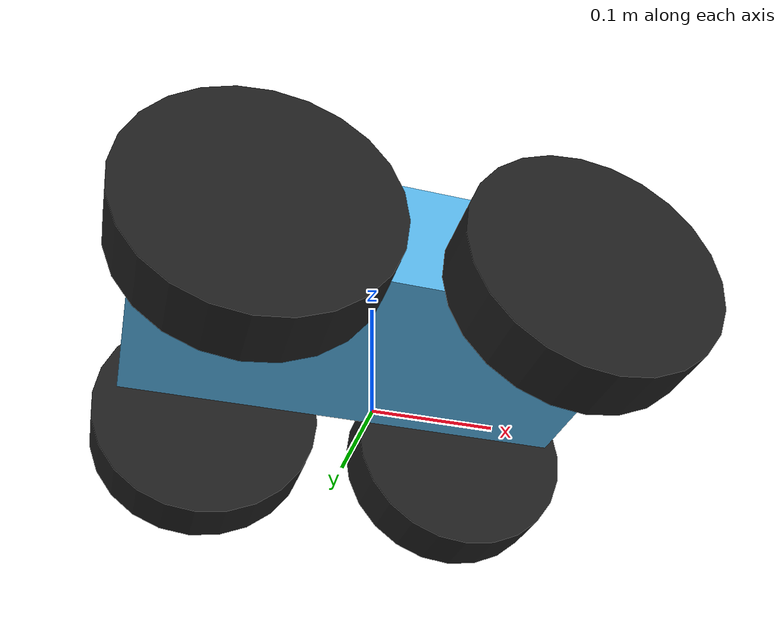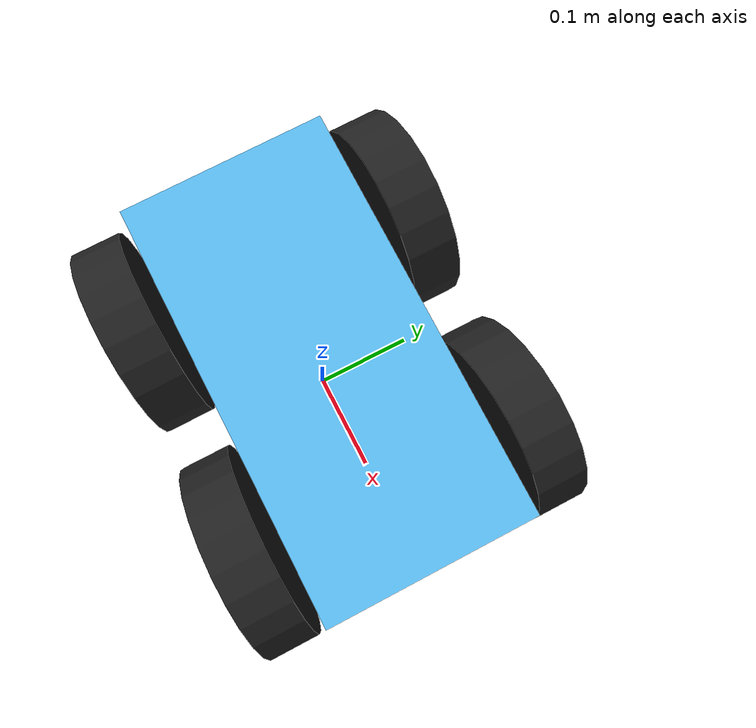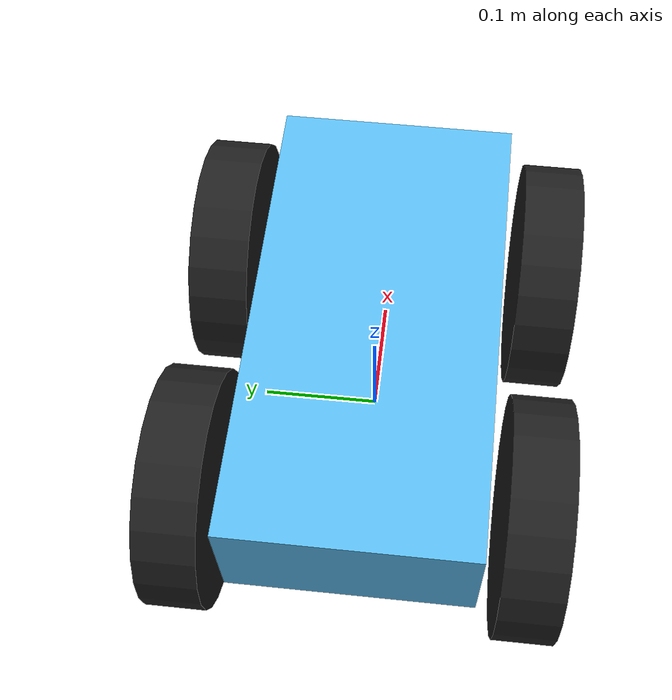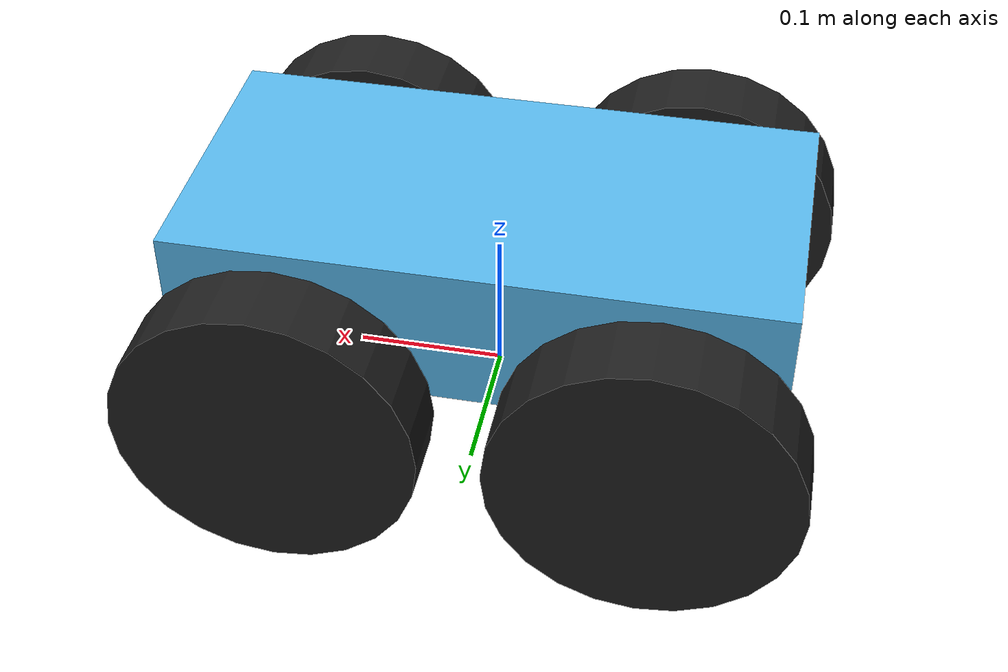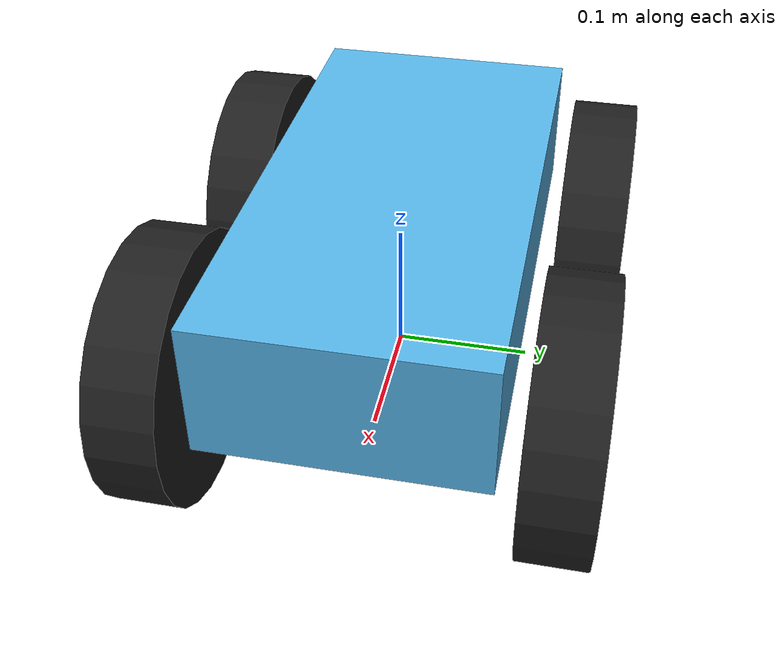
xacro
<?xml version="1.0" ?>
<robot name="differential_drive_model" xmlns:xacro="http://www.ros.org/wiki/xacro">

    <!-- include basics -->
    <xacro:include filename="$(find gazebo_simulations)/models/urdf/links.xacro" />
    <xacro:include filename="$(find gazebo_simulations)/models/urdf/joints.xacro" />
    <xacro:include filename="$(find gazebo_simulations)/models/urdf/materials.xacro" />
    <xacro:include filename="$(find gazebo_simulations)/models/urdf/const.xacro" />
    <xacro:include filename="$(find gazebo_simulations)/models/urdf/diff_model/wheel.xacro" />

    <dummy_link></dummy_link>
    <basic_joint name="dummy_base_link" type="fixed" axis_xyz="0 0 1" parent_link="dummy_link" child_link="base_link" />
    <link_box name="base_link" origin_xyz="0 0 0.1" origin_rpy="0 0 0" mass="1" length=".4" width=".2" height=".1" />
    <gazebo reference="base_link">
        <turnGravityOff>false</turnGravityOff>
    </gazebo>

    <wheel name="front_left_wheel" origin_xyz="0 0 0" mass="0.4" radius="0.1" length="0.05" base_link="base_link" joint_xyz="0.12 0.14 0.05"  />
    <wheel name="back_left_wheel" origin_xyz="0 0 0 " mass="0.4" radius="0.1" length="0.05" base_link="base_link" joint_xyz="-0.12 0.14 0.05" />
    <wheel name="back_right_wheel" origin_xyz="0 0 0" mass="0.4" radius="0.1" length="0.05" base_link="base_link" joint_xyz="-0.12 -0.14 0.05"/>
    <wheel name="front_right_wheel" origin_xyz="0 0 0" mass="0.4" radius="0.1" length="0.05" base_link="base_link" joint_xyz="0.12 -0.14 0.05"/>

    <gazebo>
        <plugin name="gazebo_ros_control" filename="libgazebo_ros_control.so">
            <robotNamespace>differential_drive_model</robotNamespace>
        </plugin>
    </gazebo>

</robot>

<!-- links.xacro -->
<robot xmlns:xacro="http://www.ros.org/wiki/xacro">

    <xacro:macro name="cylinder_inertia" params="origin_xyz origin_rpy mass radius length">
        <inertial>
            <mass value="${mass}" />
            <origin rpy="${origin_rpy}" xyz="${origin_xyz}" />
            <inertia ixx="${mass*(3*radius*radius+length*length)/12}" ixy="0.0" ixz="0.0" iyy="${mass*(3*radius*radius+length*length)/12}" iyz="0.0" izz="${mass*radius*radius/2}" />
        </inertial>
    </xacro:macro>

    <xacro:macro name="box_inertia" params="origin_xyz origin_rpy mass length width height">
        <inertial>
            <mass value="${mass}" />
            <origin rpy="${origin_rpy}" xyz="${origin_xyz}" />
            <inertia ixx="${mass*(width*width+height*height)/12}" ixy="0" ixz="0" iyy="${mass*(length*length+height*height)/12}" iyz="0" izz="${mass*(length*length+height*height)/12}" />
        </inertial>
    </xacro:macro>

    <xacro:macro name="dummy_link">
        <link name="dummy_link"></link>
    </xacro:macro>

    <xacro:macro name="link_cylinder" params="name origin_xyz origin_rpy mass radius length ">
        <link name="${name}">
            <cylinder_inertia origin_xyz="${origin_xyz}" origin_rpy="${origin_rpy}" mass="${mass}" radius="${radius}" length="${length}"/>
            <collision>
                <origin rpy="${origin_rpy}" xyz="${origin_xyz}" />
                <geometry>
                    <cylinder radius="${radius}" length="${length}" />
                </geometry>
            </collision>
            <visual>
                <origin rpy="${origin_rpy}" xyz="${origin_xyz}" />
                <geometry>
                    <cylinder radius="${radius}" length="${length}" />
                </geometry>
            </visual>
        </link>
    </xacro:macro>

    <xacro:macro name="link_cylinder_mesh" params="name origin_xyz origin_rpy mass radius length mesh_path mesh_scale">
        <link name="${name}">
            <cylinder_inertia origin_xyz="${origin_xyz}" origin_rpy="${origin_rpy}" mass="${mass}" radius="${radius}" length="${length}"/>
            <collision>
                <origin rpy="${origin_rpy}" xyz="${origin_xyz}" />
                <geometry>
                    <cylinder radius="${radius}" length="${length}" />
                </geometry>
            </collision>
            <visual>
                <origin rpy="${origin_rpy}" xyz="${origin_xyz}" />
                <geometry>
                    <mesh filename="${mesh_path}" scale="${mesh_scale}"/>
                </geometry>
            </visual>
        </link>
    </xacro:macro>

    <xacro:macro name="link_box" params="name origin_xyz origin_rpy mass length width height">
        <link name="${name}">
            <box_inertia origin_xyz="${origin_xyz}" origin_rpy="${origin_rpy}" mass="${mass}" length="${length}" width="${width}" height="${height}" />
            <collision>
                <origin rpy="${origin_rpy}" xyz="${origin_xyz}" />
                <geometry>
                    <box size="${length} ${width} ${height}" />
                </geometry>
            </collision>
            <visual>
                <origin rpy="${origin_rpy}" xyz="${origin_xyz}" />
                <geometry>
                    <box size="${length} ${width} ${height}" />
                </geometry>
            </visual>
        </link>
    </xacro:macro>

    <xacro:macro name="link_box_mesh" params="name origin_xyz origin_rpy mass length width height mesh_path scale">
        <link name="${name}">
            <box_inertia origin_xyz="${origin_xyz}" origin_rpy="${origin_rpy}" mass="${mass}" length="${length}" width="${width}" height="${height}" />
            <collision>
                <origin rpy="${origin_rpy}" xyz="${origin_xyz}" />
                <geometry>
                    <box size="${length} ${width} ${height}" />
                </geometry>
            </collision>
            <visual>
                <origin rpy="${origin_rpy}" xyz="${origin_xyz}" />
                <geometry>
                    <mesh filename="${mesh_path}" scale="${mesh_scale}"/>
                </geometry>
            </visual>
        </link>
    </xacro:macro>

</robot>

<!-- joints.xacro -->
<robot xmlns:xacro="http://www.ros.org/wiki/xacro">

    <xacro:macro name="basic_joint" params="name type axis_xyz parent_link child_link">
        <joint name="${name}" type="${type}">
            <axis xyz="${axis_xyz}" />
            <parent link="${parent_link}" />
            <child link="${child_link}" />
        </joint>
    </xacro:macro>

    <xacro:macro name="limits_joint" params="name type axis_xyz origin_rpy origin_xyz parent_link child_link limit_e limit_l limit_u limit_v">
        <joint name="${name}" type="${type}">
            <axis xyz="${axis_xyz}" />
            <limit effort="${limit_e}" lower="${limit_l}" upper="${limit_u}" velocity="${limit_v}" />
            <origin rpy="${origin_rpy}" xyz="${origin_xyz}" />
            <parent link="${parent_link}" />
            <child link="${child_link}" />
        </joint>

    </xacro:macro>

</robot>

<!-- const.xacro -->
<robot xmlns:xacro="http://www.ros.org/wiki/xacro">
    <xacro:property name="PI" value="3.1415"/>
</robot>
